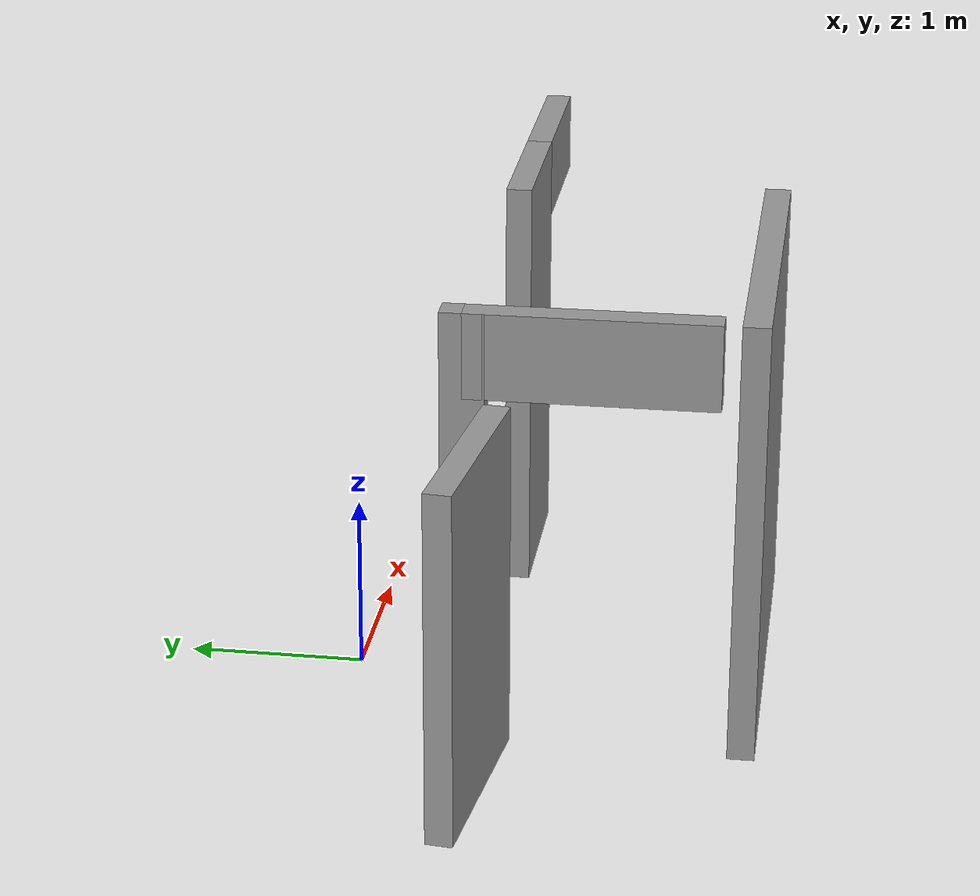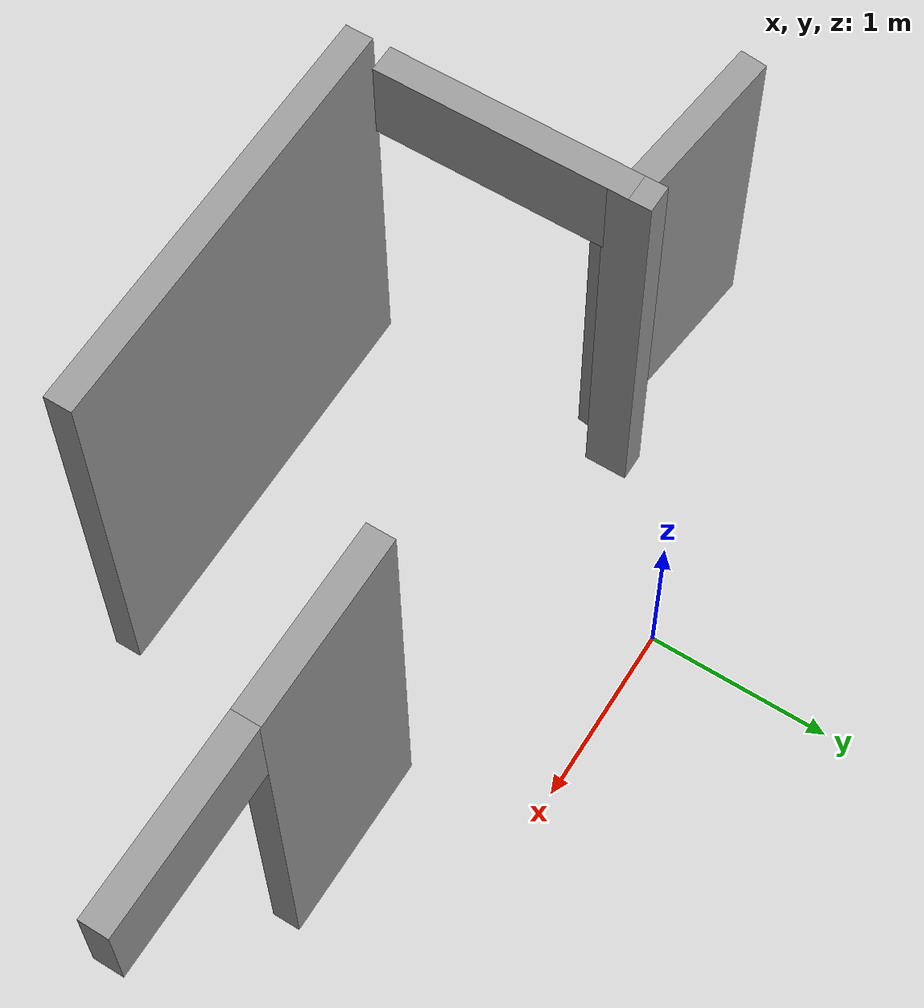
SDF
<sdf version="1.7">
 <world name="default">
  <model name="demo_clean">
   <link name="Wall_19">
    <pose>0.295923 -2.24288 0 0 -0 0</pose>
    <inertial>
     <inertia><ixx>0</ixx><ixy>0</ixy><ixz>0</ixz><iyy>0</iyy><iyz>0</iyz><izz>0</izz></inertia>
     <mass>0</mass>
    </inertial>
    <visual name="Wall_19_Visual">
     <pose>0 0 1.25 0 -0 0</pose>
     <geometry><box><size>2.34163 0.15 2.5</size></box></geometry>
     <material>
      <script><uri>file://media/materials/scripts/gazebo.material</uri><name>Gazebo/Grey</name></script>
      <ambient>1 1 1 1</ambient>
      <shader type="pixel"/>
     </material>
     <meta><layer>0</layer></meta>
    </visual>
    <collision name="Wall_19_Collision">
     <pose>0 0 1.25 0 -0 0</pose>
     <geometry><box><size>2.34163 0.15 2.5</size></box></geometry>
     <surface>
      <friction>
       <ode><mu>1</mu><mu2>1</mu2><fdir1>0 0 0</fdir1><slip1>0</slip1><slip2>0</slip2></ode>
       <torsional>
        <coefficient>1</coefficient>
        <patch_radius>0</patch_radius>
        <surface_radius>0</surface_radius>
        <use_patch_radius>1</use_patch_radius>
        <ode><slip>0</slip></ode>
       </torsional>
      </friction>
      <bounce><restitution_coefficient>0</restitution_coefficient><threshold>1e+06</threshold></bounce>
      <contact>
       <collide_without_contact>0</collide_without_contact>
       <collide_without_contact_bitmask>1</collide_without_contact_bitmask>
       <collide_bitmask>1</collide_bitmask>
       <ode>
        <soft_cfm>0</soft_cfm>
        <soft_erp>0.2</soft_erp>
        <kp>1e+13</kp>
        <kd>1</kd>
        <max_vel>0.01</max_vel>
        <min_depth>0</min_depth>
       </ode>
       <bullet>
        <split_impulse>1</split_impulse>
        <split_impulse_penetration_threshold>-0.01</split_impulse_penetration_threshold>
        <soft_cfm>0</soft_cfm>
        <soft_erp>0.2</soft_erp>
        <kp>1e+13</kp>
        <kd>1</kd>
       </bullet>
      </contact>
     </surface>
    </collision>
   </link>
   <link name="Wall_21_clone">
    <pose>-0.802658 -0.717313 0 0 0 -1.5708</pose>
    <inertial>
     <inertia><ixx>0</ixx><ixy>0</ixy><ixz>0</ixz><iyy>0</iyy><iyz>0</iyz><izz>0</izz></inertia>
     <mass>0</mass>
    </inertial>
    <visual name="Wall_21_Visual">
     <pose>0 0 1.25 0 -0 0</pose>
     <geometry><box><size>0.240964 0.15 2.5</size></box></geometry>
     <material>
      <script><uri>file://media/materials/scripts/gazebo.material</uri><name>Gazebo/Grey</name></script>
      <ambient>1 1 1 1</ambient>
      <shader type="pixel"/>
     </material>
     <meta><layer>0</layer></meta>
    </visual>
    <collision name="Wall_21_Collision">
     <pose>0 0 1.25 0 -0 0</pose>
     <geometry><box><size>0.240964 0.15 2.5</size></box></geometry>
     <surface>
      <friction>
       <ode><mu>1</mu><mu2>1</mu2><fdir1>0 0 0</fdir1><slip1>0</slip1><slip2>0</slip2></ode>
       <torsional>
        <coefficient>1</coefficient>
        <patch_radius>0</patch_radius>
        <surface_radius>0</surface_radius>
        <use_patch_radius>1</use_patch_radius>
        <ode><slip>0</slip></ode>
       </torsional>
      </friction>
      <bounce><restitution_coefficient>0</restitution_coefficient><threshold>1e+06</threshold></bounce>
      <contact>
       <collide_without_contact>0</collide_without_contact>
       <collide_without_contact_bitmask>1</collide_without_contact_bitmask>
       <collide_bitmask>1</collide_bitmask>
       <ode>
        <soft_cfm>0</soft_cfm>
        <soft_erp>0.2</soft_erp>
        <kp>1e+13</kp>
        <kd>1</kd>
        <max_vel>0.01</max_vel>
        <min_depth>0</min_depth>
       </ode>
       <bullet>
        <split_impulse>1</split_impulse>
        <split_impulse_penetration_threshold>-0.01</split_impulse_penetration_threshold>
        <soft_cfm>0</soft_cfm>
        <soft_erp>0.2</soft_erp>
        <kp>1e+13</kp>
        <kd>1</kd>
       </bullet>
      </contact>
     </surface>
    </collision>
   </link>
   <link name="Wall_21_clone_0_clone_0_clone_clone">
    <pose>-1.47342 -0.839052 -0.23202 0 -0 3.0297</pose>
    <inertial>
     <inertia><ixx>0</ixx><ixy>0</ixy><ixz>0</ixz><iyy>0</iyy><iyz>0</iyz><izz>0</izz></inertia>
     <mass>0</mass>
    </inertial>
    <gravity>0</gravity>
    <visual name="Wall_21_Visual">
     <pose>0 0 1.25 0 -0 0</pose>
     <geometry><box><size>1.1941 0.15 1.96033</size></box></geometry>
     <material>
      <script><uri>file://media/materials/scripts/gazebo.material</uri><name>Gazebo/Grey</name></script>
      <ambient>1 1 1 1</ambient>
      <shader type="pixel"><normal_map>__default__</normal_map></shader>
      <diffuse>0.7 0.7 0.7 1</diffuse>
      <specular>0.01 0.01 0.01 1</specular>
      <emissive>0 0 0 1</emissive>
     </material>
     <meta><layer>0</layer></meta>
    </visual>
    <collision name="Wall_21_Collision">
     <pose>0 0 1.25 0 -0 0</pose>
     <geometry><box><size>1.1941 0.15 1.96033</size></box></geometry>
     <surface>
      <friction>
       <ode><mu>1</mu><mu2>1</mu2><fdir1>0 0 0</fdir1><slip1>0</slip1><slip2>0</slip2></ode>
       <torsional>
        <coefficient>1</coefficient>
        <patch_radius>0</patch_radius>
        <surface_radius>0</surface_radius>
        <use_patch_radius>1</use_patch_radius>
        <ode><slip>0</slip></ode>
       </torsional>
      </friction>
      <bounce><restitution_coefficient>0</restitution_coefficient><threshold>1e+06</threshold></bounce>
      <contact>
       <collide_without_contact>0</collide_without_contact>
       <collide_without_contact_bitmask>1</collide_without_contact_bitmask>
       <collide_bitmask>1</collide_bitmask>
       <ode>
        <soft_cfm>0</soft_cfm>
        <soft_erp>0.2</soft_erp>
        <kp>1e+13</kp>
        <kd>1</kd>
        <max_vel>0.01</max_vel>
        <min_depth>0</min_depth>
       </ode>
       <bullet>
        <split_impulse>1</split_impulse>
        <split_impulse_penetration_threshold>-0.01</split_impulse_penetration_threshold>
        <soft_cfm>0</soft_cfm>
        <soft_erp>0.2</soft_erp>
        <kp>1e+13</kp>
        <kd>1</kd>
       </bullet>
      </contact>
     </surface>
    </collision>
   </link>
   <link name="Wall_28">
    <pose>1.74215 -0.745235 0 0 -0 0</pose>
    <visual name="Wall_28_Visual">
     <pose>0 0 1.25 0 -0 0</pose>
     <geometry><box><size>1 0.15 2.5</size></box></geometry>
     <material>
      <script><uri>file://media/materials/scripts/gazebo.material</uri><name>Gazebo/Grey</name></script>
      <ambient>1 1 1 1</ambient>
      <shader type="pixel"/>
     </material>
     <meta><layer>0</layer></meta>
    </visual>
    <collision name="Wall_28_Collision">
     <pose>0 0 1.25 0 -0 0</pose>
     <geometry><box><size>1 0.15 2.5</size></box></geometry>
     <surface>
      <friction>
       <ode><mu>1</mu><mu2>1</mu2><fdir1>0 0 0</fdir1><slip1>0</slip1><slip2>0</slip2></ode>
       <torsional>
        <coefficient>1</coefficient>
        <patch_radius>0</patch_radius>
        <surface_radius>0</surface_radius>
        <use_patch_radius>1</use_patch_radius>
        <ode><slip>0</slip></ode>
       </torsional>
      </friction>
      <bounce><restitution_coefficient>0</restitution_coefficient><threshold>1e+06</threshold></bounce>
      <contact>
       <collide_without_contact>0</collide_without_contact>
       <collide_without_contact_bitmask>1</collide_without_contact_bitmask>
       <collide_bitmask>1</collide_bitmask>
       <ode>
        <soft_cfm>0</soft_cfm>
        <soft_erp>0.2</soft_erp>
        <kp>1e+13</kp>
        <kd>1</kd>
        <max_vel>0.01</max_vel>
        <min_depth>0</min_depth>
       </ode>
       <bullet>
        <split_impulse>1</split_impulse>
        <split_impulse_penetration_threshold>-0.01</split_impulse_penetration_threshold>
        <soft_cfm>0</soft_cfm>
        <soft_erp>0.2</soft_erp>
        <kp>1e+13</kp>
        <kd>1</kd>
       </bullet>
      </contact>
     </surface>
    </collision>
   </link>
   <link name="Wall_28_clone">
    <pose>2.7476 -0.745235 1.01168 0 -0 0</pose>
    <inertial>
     <inertia><ixx>0</ixx><ixy>0</ixy><ixz>0</ixz><iyy>0</iyy><iyz>0</iyz><izz>0</izz></inertia>
     <mass>0</mass>
    </inertial>
    <gravity>0</gravity>
    <visual name="Wall_28_Visual">
     <pose>0 0 1.25 0 -0 0</pose>
     <geometry><box><size>1.03415 0.15 0.476648</size></box></geometry>
     <material>
      <script><uri>file://media/materials/scripts/gazebo.material</uri><name>Gazebo/Grey</name></script>
      <ambient>1 1 1 1</ambient>
      <shader type="pixel"><normal_map>__default__</normal_map></shader>
      <diffuse>0.7 0.7 0.7 1</diffuse>
      <specular>0.01 0.01 0.01 1</specular>
      <emissive>0 0 0 1</emissive>
     </material>
     <meta><layer>0</layer></meta>
    </visual>
    <collision name="Wall_28_Collision">
     <pose>0 0 1.25 0 -0 0</pose>
     <geometry><box><size>1.03415 0.15 0.476648</size></box></geometry>
     <surface>
      <friction>
       <ode><mu>1</mu><mu2>1</mu2><fdir1>0 0 0</fdir1><slip1>0</slip1><slip2>0</slip2></ode>
       <torsional>
        <coefficient>1</coefficient>
        <patch_radius>0</patch_radius>
        <surface_radius>0</surface_radius>
        <use_patch_radius>1</use_patch_radius>
        <ode><slip>0</slip></ode>
       </torsional>
      </friction>
      <bounce><restitution_coefficient>0</restitution_coefficient><threshold>1e+06</threshold></bounce>
      <contact>
       <collide_without_contact>0</collide_without_contact>
       <collide_without_contact_bitmask>1</collide_without_contact_bitmask>
       <collide_bitmask>1</collide_bitmask>
       <ode>
        <soft_cfm>0</soft_cfm>
        <soft_erp>0.2</soft_erp>
        <kp>1e+13</kp>
        <kd>1</kd>
        <max_vel>0.01</max_vel>
        <min_depth>0</min_depth>
       </ode>
       <bullet>
        <split_impulse>1</split_impulse>
        <split_impulse_penetration_threshold>-0.01</split_impulse_penetration_threshold>
        <soft_cfm>0</soft_cfm>
        <soft_erp>0.2</soft_erp>
        <kp>1e+13</kp>
        <kd>1</kd>
       </bullet>
      </contact>
     </surface>
    </collision>
   </link>
   <link name="Wall_28_clone_clone_clone">
    <pose>-0.802228 -1.39589 1.01168 0 0 -1.57004</pose>
    <inertial>
     <inertia><ixx>0</ixx><ixy>0</ixy><ixz>0</ixz><iyy>0</iyy><iyz>0</iyz><izz>0</izz></inertia>
     <mass>0</mass>
    </inertial>
    <gravity>0</gravity>
    <visual name="Wall_28_Visual">
     <pose>0 0 1.25 0 -0 0</pose>
     <geometry><box><size>1.35894 0.15 0.476648</size></box></geometry>
     <material>
      <script><uri>file://media/materials/scripts/gazebo.material</uri><name>Gazebo/Grey</name></script>
      <ambient>1 1 1 1</ambient>
      <shader type="pixel"><normal_map>__default__</normal_map></shader>
     </material>
     <meta><layer>0</layer></meta>
    </visual>
    <collision name="Wall_28_Collision">
     <pose>0 0 1.25 0 -0 0</pose>
     <geometry><box><size>1.35894 0.15 0.476648</size></box></geometry>
     <surface>
      <friction>
       <ode><mu>1</mu><mu2>1</mu2><fdir1>0 0 0</fdir1><slip1>0</slip1><slip2>0</slip2></ode>
       <torsional>
        <coefficient>1</coefficient>
        <patch_radius>0</patch_radius>
        <surface_radius>0</surface_radius>
        <use_patch_radius>1</use_patch_radius>
        <ode><slip>0</slip></ode>
       </torsional>
      </friction>
      <bounce><restitution_coefficient>0</restitution_coefficient><threshold>1e+06</threshold></bounce>
      <contact>
       <collide_without_contact>0</collide_without_contact>
       <collide_without_contact_bitmask>1</collide_without_contact_bitmask>
       <collide_bitmask>1</collide_bitmask>
       <ode>
        <soft_cfm>0</soft_cfm>
        <soft_erp>0.2</soft_erp>
        <kp>1e+13</kp>
        <kd>1</kd>
        <max_vel>0.01</max_vel>
        <min_depth>0</min_depth>
       </ode>
       <bullet>
        <split_impulse>1</split_impulse>
        <split_impulse_penetration_threshold>-0.01</split_impulse_penetration_threshold>
        <soft_cfm>0</soft_cfm>
        <soft_erp>0.2</soft_erp>
        <kp>1e+13</kp>
        <kd>1</kd>
       </bullet>
      </contact>
     </surface>
    </collision>
   </link>
   <static>1</static>
  </model>
 </world>
</sdf>
